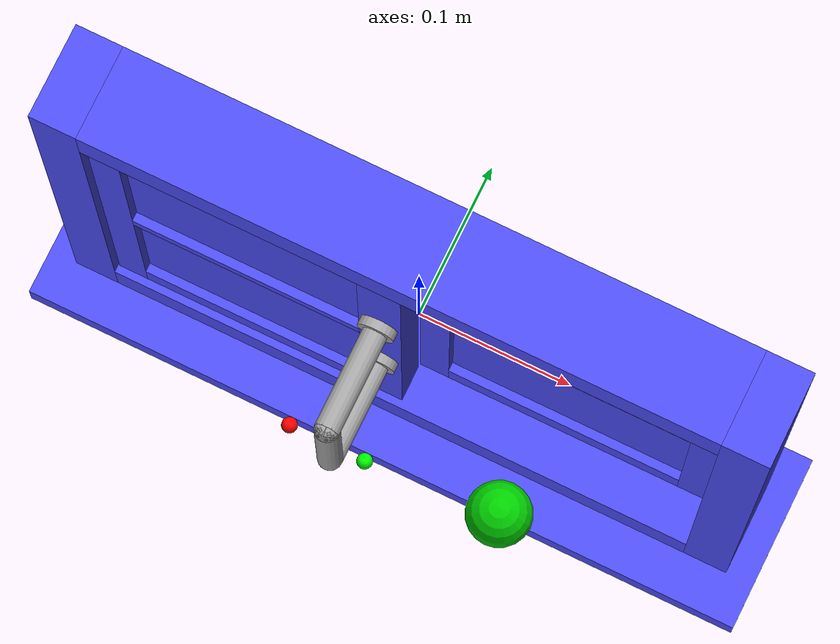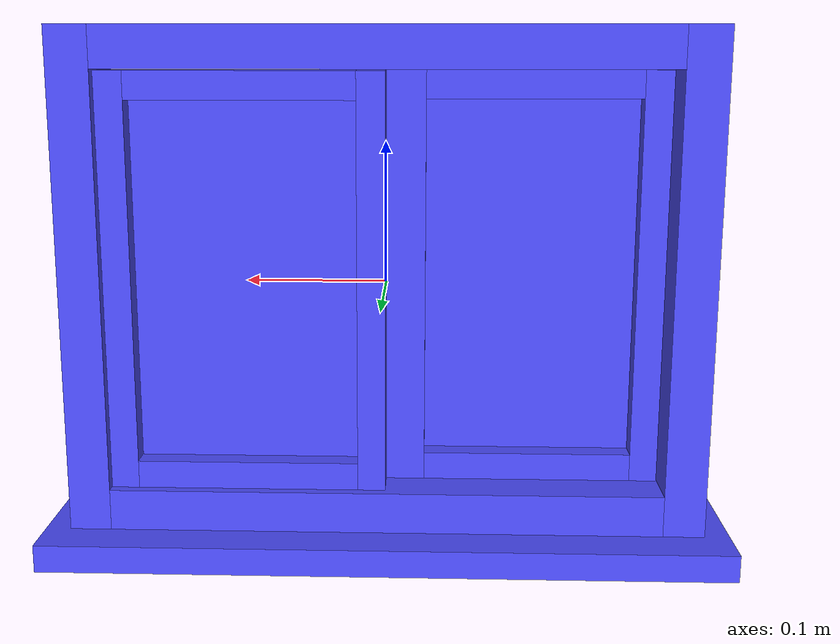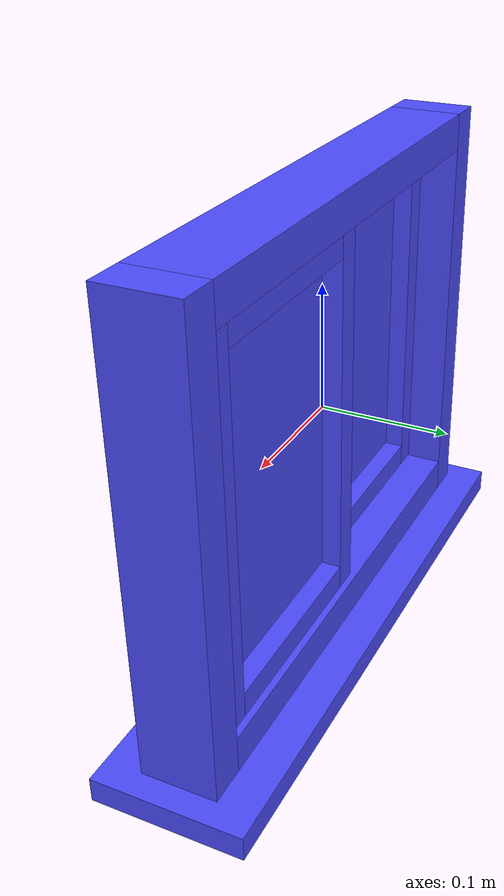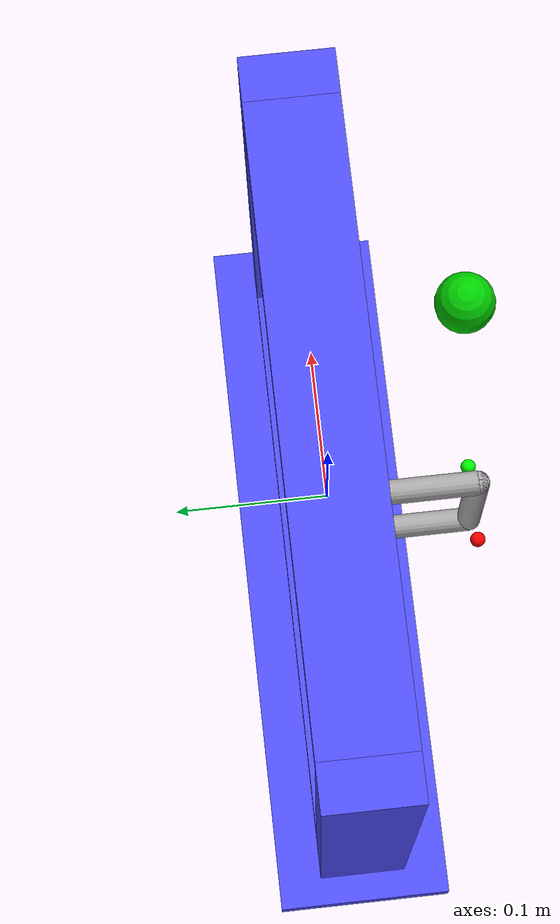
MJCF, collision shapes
<mujoco model="window_horiz">
    <compiler angle="radian" inertiafromgeom="auto" inertiagrouprange="4 5"/>
    <asset>

      <material name="window_col" rgba="0.3 0.3 1.0 0.5" shininess="0" specular="0"/>
      <material name="window_white" rgba=".65 .65 .65 1" shininess="1" reflectance=".7" specular=".5"/>
      <material name="window_red" rgba=".36 .26 .27 1" shininess="1" reflectance=".7" specular=".5"/>
      <material name="window_green" rgba=".51 .58 .55 1" shininess="1" reflectance=".7" specular=".5"/>
      <material name="window_black" rgba=".3 .3 .3 1" shininess="1" reflectance=".7" specular=".5"/>
      <material name="window_glass" rgba="0 .3 .4 .1" shininess="1" reflectance="1" specular=".5"/>

      <mesh file="../objects/meshes/window/window_h_base.stl" name="window_h_base"/>
      <mesh file="../objects/meshes/window/window_h_frame.stl" name="window_h_frame"/>
      <mesh file="../objects/meshes/window/windowa_h_frame.stl" name="windowa_h_frame"/>
      <mesh file="../objects/meshes/window/windowa_h_glass.stl" name="windowa_h_glass"/>
      <mesh file="../objects/meshes/window/windowb_h_frame.stl" name="windowb_h_frame"/>
      <mesh file="../objects/meshes/window/windowb_h_glass.stl" name="windowb_h_glass"/>

      <mesh file="../objects/meshes/window/window_base.stl" name="window_base"/>
      <mesh file="../objects/meshes/window/window_frame.stl" name="window_frame"/>
      <mesh file="../objects/meshes/window/windowa_frame.stl" name="windowa_frame"/>
      <mesh file="../objects/meshes/window/windowa_glass.stl" name="windowa_glass"/>
      <mesh file="../objects/meshes/window/windowb_frame.stl" name="windowb_frame"/>
      <mesh file="../objects/meshes/window/windowb_glass.stl" name="windowb_glass"/>

    </asset>
    <default>
      <default class="window_base">
          <joint armature="0.001" damping="2" limited="true"/>
          <geom conaffinity="0" contype="0" group="1" type="mesh"/>
          <position ctrllimited="true" ctrlrange="0 1.57"/>
          <default class="window_viz">
              <geom condim="4" type="mesh"/>
          </default>
          <default class="window_col">
              <geom conaffinity="1" condim="3" contype="1" group="4" material="window_col" solimp="0.99 0.99 0.01" solref="0.01 1"/>
          </default>
      </default>
    </default>

    <worldbody>
        <body name = "window" childclass="window_base">
            <geom material="window_red" mesh="window_h_base" pos="0 0 -0.192" />
            <geom material="window_red" mesh="window_h_frame"/>
            <geom class="window_col" pos="-0.216 0 0" size="0.015 0.03 0.181" type="box" />
            <geom class="window_col" pos="0 0 -0.192" size="0.25 0.06 0.01" type="box" />
            <geom class="window_col" pos="0.216 0 0" size="0.015 0.03 0.181" type="box" />
            <geom class="window_col" pos="0 0 -0.166" size="0.201 0.03 0.015" type="box" />
            <geom class="window_col" pos="0 0 0.166" size="0.201 0.03 0.015" type="box" />

            <body name="windowb_a">
                <joint type="slide" range="0 .2" axis="1 0 0" name="window_slide"/>
                <geom material="window_white" euler="1.57 0 0" pos="-0.014 -0.028 0.045" size="0.012  0.003" type="cylinder" />
                <geom material="window_white" euler="1.57 0 0" pos="-0.014 -0.028 -0.045" size="0.012 0.003" type="cylinder" />
                <geom material="window_white" euler="1.57 0 0" pos="-0.014 -0.06 0.045" size="0.008 0.035" type="capsule" />
                <geom material="window_white" euler="1.57 0 0" pos="-0.014 -0.06 -0.045" size="0.008 0.035" type="capsule" />
                <geom material="window_white" pos="-0.014 -0.095 0" size="0.008 0.045" type="capsule" />
                <geom material="window_red" mesh="windowb_h_frame" pos="-0.104 -0.022 0" />
                <geom material="window_glass" mesh="windowb_h_glass" pos="-0.104 -0.018 0" />

                <geom class="window_col" euler="1.57 0 0" pos="-0.014 -0.028 0.045" size="0.012  0.003" type="cylinder" />
                <geom class="window_col" euler="1.57 0 0" pos="-0.014 -0.028 -0.045" size="0.012 0.003" type="cylinder" />
                <geom class="window_col" euler="1.57 0 0" pos="-0.014 -0.06 0.045" size="0.008 0.035" type="capsule" />
                <geom class="window_col" euler="1.57 0 0" pos="-0.014 -0.06 -0.045" size="0.008 0.035" type="capsule" />
                <geom class="window_col" pos="-0.014 -0.095 0" size="0.008 0.045" type="capsule" />
                <geom class="window_col" pos="-0.014 -0.013 0" size="0.014 0.012 0.15" type="box" />
                <geom class="window_col" pos="-0.19 -0.013 0" size="0.01 0.012 0.15" type="box" />
                <geom class="window_col" pos="-0.104 -0.013 0.14" size="0.076 0.012 0.01" type="box" />
                <geom class="window_col" pos="-0.104 -0.013 -0.14" size="0.076 0.012 0.01" type="box" />
                <geom class="window_col" pos="-0.104 -0.018 0" size="0.076 0.001 0.13" type="box" />
                <geom class="window_col" pos="-0.104 -0.022 0" size="0.076 0.003 0.005" type="box" />
                <site name="handleOpenStart" pos="-0.04 -0.095 0." size="0.005" rgba="1 0 0 1"/>
                <site name="handleCloseStart" pos="0.01 -0.095 0." size="0.005" rgba="0 1 0 1"/>
            </body>
            <body name="windowb_b" pos="0.1 0.013 0">
                <geom material="window_red" mesh="windowa_h_frame"/>
                <geom material="window_glass" mesh="windowa_h_glass" pos="0 -0.005 0" />
                <geom class="window_col" pos="0 0 -0.14" size="0.08 0.012 0.01" type="box" />
                <geom class="window_col" pos="0 0 0.14" size="0.08 0.012 0.01" type="box" />
                <geom class="window_col" pos="0 -0.005 0" size="0.08 0.001 0.13" type="box" />
                <geom class="window_col" pos="-0.0 -0.009 0" size="0.08 0.003 0.005" type="box" />
                <geom class="window_col" pos="-0.09 0 0" size="0.01 0.012 0.15" type="box" />
                <geom class="window_col" pos="0.09 0 0" size="0.01 0.012 0.15" type="box" />
            </body>
        </body>
        <site name="goal" pos=".1 -.1 0.068" size="0.02" rgba="0 0.8 0 1"/>
    </worldbody>
</mujoco>
